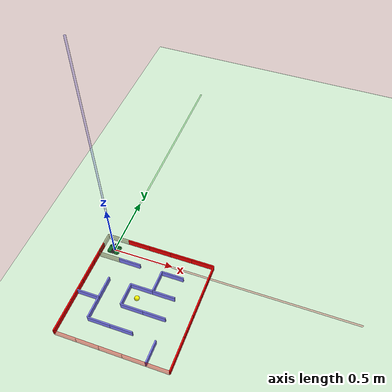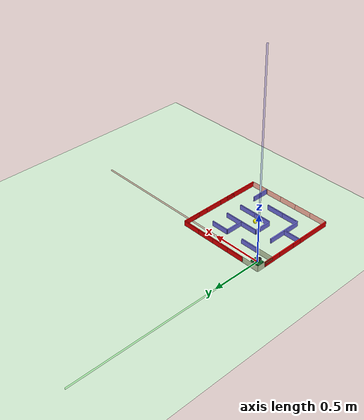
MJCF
<mujoco>
    <default>
        <default class="wheel">
            <geom type="cylinder" size=".0027 .0007" rgba=".5 .5 1 1" />
        </default>
    </default>

    <compiler angle="degree" coordinate="local" inertiafromgeom="true" />
    <option integrator="RK4" timestep="0.01" />
    <asset>
        <texture builtin="gradient" height="100" rgb1="1 1 1" rgb2="0 0 0" type="skybox" width="100" />
        <texture builtin="flat" height="1278" mark="cross" markrgb="1 1 1" name="texgeom"
            random="0.01" rgb1="0.8 0.6 0.4" rgb2="0.8 0.6 0.4" type="cube" width="127" />
        <texture builtin="checker" height="100" name="texplane" rgb1="0 0 0" rgb2="0.8 0.8 0.8"
            type="2d" width="100" />
        <material name="MatPlane" reflectance="0.5" shininess="1" specular="1" texrepeat="60 60"
            texture="texplane" />
        <material name="geom" texture="texgeom" texuniform="true" />
    </asset>

    <worldbody>
        <geom conaffinity="1" condim="3" name="floor" friction="0.0 0.0 0.0" pos="0 0 0" rgba="0.8 0.9 0.8 1" size="40 40 40" type="plane"/>

        <body pos="0 0 1.8e-3">
            <freejoint />
            <geom name="mein_body1" type="box" size="0.05 0.03 0.0005" friction="0.0 0.0 0.0" rgba="0.05 0.4 0.15 1" pos="0 0 0.001" />
            <geom name="mein_body_chip1" type="box" size="0.00707 0.00707 0.0005" friction="0.0 0.0 0.0" rgba="0.05 0.4 0.15 1" pos="0.04 0.03 0.001" euler="0 0 45" />
            <geom name="mein_body_chip2" type="box" size="0.00707 0.00707 0.0005" friction="0.0 0.0 0.0" rgba="0.05 0.4 0.15 1" pos="0.04 -0.03 0.001" euler="0 0 45" />
            <geom name="mein_body_chip3" type="box" size="0.00707 0.00707 0.0005" friction="0.0 0.0 0.0" rgba="0.05 0.4 0.15 1" pos="-0.04 0.03 0.001" euler="0 0 45" />
            <geom name="mein_body_chip4" type="box" size="0.00707 0.00707 0.0005" friction="0.0 0.0 0.0" rgba="0.05 0.4 0.15 1" pos="-0.04 -0.03 0.001" euler="0 0 45" />
            <geom name="mein_body4" type="box" size="0.013 0.04 0.0005" friction="0.0 0.0 0.0" rgba="0.05 0.4 0.15 1" pos="-0.027 0 0.001"/>
            <geom name="mein_body5" type="box" size="0.013 0.04 0.0005" friction="0.0 0.0 0.0" rgba="0.05 0.4 0.15 1" pos="0.027 0 0.001"/>
            <site name="sensor_left_front" type="box" size="0.003 0.003 0.003" pos="0.031 0.036 0.004" zaxis="1 0 0" rgba=".5 1 .5 1"/>
            <site name="sensor_left_side" type="box" size="0.003 0.003 0.003" pos="0.043 0.016 0.004" zaxis="0.25 1 0" rgba=".5 1 .5 1"/>
            <site name="sensor_right_front" type="box" size="0.003 0.003 0.003" pos="0.031 -0.036 0.004" zaxis="1 0 0" rgba=".5 1 .5 1"/>
            <site name="sensor_right_side" type="box" size="0.003 0.003 0.003" pos="0.043 -0.016 0.004" zaxis="0.25 -1 0" rgba=".5 1 .5 1"/>

            <body name="left wheel" pos="-0.0 0.036 0.0135" zaxis="0 1 0">
                <joint name="left wheel joint" type="hinge" axis="0 0 1" limited="false" />
                <geom type="cylinder" size="0.0135 0.0035" rgba=".3 .3 0.3 1" />
                <site type="box" rgba="1 1 1 1" size=".0006 .0036 .0012" />
            </body>

            <body name="right wheel" pos="-0.0 -0.036 0.0135" zaxis="0 1 0">
                <joint name="right wheel joint" type="hinge" axis="0 0 1" limited="false" />
                <geom type="cylinder" size="0.0135 0.0035" rgba=".3 .3 0.3 1" />
                <site type="box" rgba="1 1 1 1" size=".0006 .0036 .0012" />
            </body>

            <body name="motorbox1" pos="0 -0.018 0.0135">
                <geom type="box" size="0.01 0.0135 0.01" rgba="0.1 0.1 0.1 1" />
            </body>

            <body name="motorbox2" pos="0 0.018 0.0135">
                <geom type="box" size="0.01 0.0135 0.01" rgba="0.1 0.1 0.1 1" />
            </body>

        </body>
    <site type="box" rgba="1 0 0 0.05" fromto="0 0 0 2 0 0" size="0.005"/>
    <site type="box" rgba="0 1 0 0.05" fromto="0 0 0 0 2 0" size="0.005"/>
    <site type="box" rgba="0 0 1 0.05" fromto="0 0 0 0 0 2" size="0.005"/>

        <body name="maze_init_wall_outline" pos="0 0.09 0.025">
                <geom type="box" size="0.09 0.005 0.025" rgba=".5 .5 .3 0.5" pos="0 -0.18 0.0"/>
                <geom type="box" size="0.09 0.005 0.025" rgba="1 0 0 1" pos="0.18 0 0"/>
                <geom type="box" size="0.09 0.005 0.025" rgba="1 0 0 1" pos="0.36 0 0"/>
                <geom type="box" size="0.09 0.005 0.025" rgba="1 0 0 1" pos="0.54 0 0"/>
                <geom type="box" size="0.09 0.005 0.025" rgba="1 0 0 1" pos="0.72 0 0"/>

                <geom type="box" size="0.005 0.09 0.025" rgba="1 0 0 1" pos="0.81 -0.09 0"/>
                <geom type="box" size="0.005 0.09 0.025" rgba="1 0 0 1" pos="0.81 -0.18 0"/>
                <geom type="box" size="0.005 0.09 0.025" rgba="1 0 0 1" pos="0.81 -0.36 0"/>
                <geom type="box" size="0.005 0.09 0.025" rgba="1 0 0 1" pos="0.81 -0.54 0"/>
                <geom type="box" size="0.005 0.18 0.025" rgba="1 0 0 1" pos="0.81 -0.72 0"/>

                <geom type="box" size="0.09 0.005 0.025" rgba=".5 .5 .3 0.5" />
                <geom type="box" size="0.09 0.005 0.025" rgba="1 0 0 0.4" pos="0.0 -0.90 0"/>
                <geom type="box" size="0.09 0.005 0.025" rgba="1 0 0 0.4" pos="0.18 -0.90 0"/>
                <geom type="box" size="0.09 0.005 0.025" rgba="1 0 0 0.4" pos="0.36 -0.90 0"/>
                <geom type="box" size="0.09 0.005 0.025" rgba="1 0 0 0.4" pos="0.54 -0.90 0"/>
                <geom type="box" size="0.09 0.005 0.025" rgba="1 0 0 0.4" pos="0.72 -0.90 0"/>

                <geom type="box" size="0.005 0.09 0.025" rgba=".5 .5 .3 0.5" pos="-0.09 -0.09 0"/>
                <geom type="box" size="0.005 0.09 0.025" rgba="1 0 0 1" pos="-0.09 -0.18 0"/>
                <geom type="box" size="0.005 0.09 0.025" rgba="1 0 0 1" pos="-0.09 -0.36 0"/>
                <geom type="box" size="0.005 0.09 0.025" rgba="1 0 0 1" pos="-0.09 -0.54 0"/>
                <geom type="box" size="0.005 0.18 0.025" rgba="1 0 0 1" pos="-0.09 -0.72 0"/>
            </body>

            <body name="maze_wall2" pos="0.18 -0.09 0.025">
                <geom type="box" size="0.09 0.005 0.025" rgba=".5 .5 1 1" />
            </body>

            <body name="maze_wall3" pos="0.54 -0.09 0.025">
                <geom type="box" size="0.09 0.005 0.025" rgba=".5 .5 1 1" />
            </body>
            <body name="maze_wall4" pos="0.54 -0.27 0.025">
                <geom type="box" size="0.09 0.005 0.025" rgba=".5 .5 1 1" />
            </body>
            <body name="maze_wall5" pos="0.36 -0.27 0.025">
                <geom type="box" size="0.09 0.005 0.025" rgba=".5 .5 1 1" />
            </body>
            <body name="maze_wall6" pos="0.54 -0.45 0.025">
                <geom type="box" size="0.09 0.005 0.025" rgba=".5 .5 1 1" />
            </body>
            <body name="maze_wall7" pos="0.36 -0.45 0.025">
                <geom type="box" size="0.09 0.005 0.025" rgba=".5 .5 1 1" />
            </body>
            <body name="maze_wall8" pos="0.27 -0.36 0.025">
                <geom type="box" size="0.005 0.09 0.025" rgba=".5 .5 1 1" />
            </body>
            <body name="maze_wall9" pos="0.09 -0.36 0.025">
                <geom type="box" size="0.005 0.09 0.025" rgba=".5 .5 1 1" />
            </body>
            <body name="maze_wall10" pos="0.09 -0.54 0.025">
                <geom type="box" size="0.005 0.09 0.025" rgba=".5 .5 1 1" />
            </body>
            <body name="maze_wall11" pos="0.00 -0.45 0.025">
                <geom type="box" size="0.09 0.005 0.025" rgba=".5 .5 1 1" />
            </body>
            <body name="maze_wall12" pos="0.18 -0.63 0.025">
                <geom type="box" size="0.09 0.005 0.025" rgba=".5 .5 1 1" />
            </body>
            <body name="maze_wall13" pos="0.36 -0.63 0.025">
                <geom type="box" size="0.09 0.005 0.025" rgba=".5 .5 1 1" />
            </body>
            <body name="maze_wall14" pos="0.63 -0.72 0.025">
                <geom type="box" size="0.005 0.09 0.025" rgba=".5 .5 1 1" />
            </body>
            <body name="maze_wall15" pos="0.45 -0.18 0.025">
                <geom type="box" size="0.005 0.09 0.025" rgba=".5 .5 1 1" />
            </body>

            <body name="Goal" pos="0.365 -0.365 0.045">
                <geom name="goal" type="sphere" size="0.02" rgba="1 1 0 1" />
            </body>

    </worldbody>
    <actuator>
        <motor name="right" joint="right wheel joint" gear="0.0008"/>
        <motor name="left" joint="left wheel joint" gear="0.0008" />
    </actuator>

    <sensor>
        <rangefinder name="LF" site="sensor_left_front" cutoff="0.5"/>
        <rangefinder name="LS" site="sensor_left_side" cutoff="0.5"/>
        <rangefinder name="RF" site="sensor_right_front" cutoff="0.5"/>
        <rangefinder name="RS" site="sensor_right_side" cutoff="0.5"/>
    </sensor>
</mujoco>
